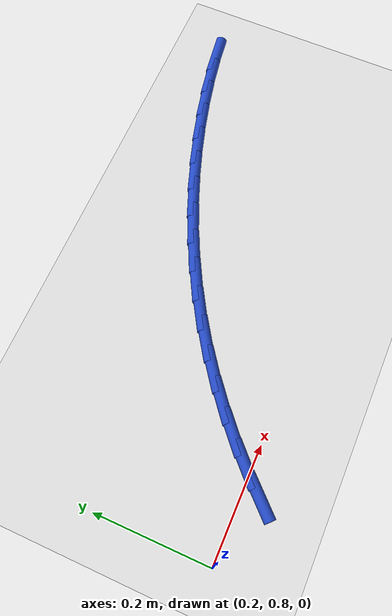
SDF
<sdf version="1.6">
 <world name="default">
  <model name="ground_plane">
   <static>1</static>
   <link name="link">
    <collision name="collision">
     <geometry><plane><normal>0 0 1</normal><size>100 100</size></plane></geometry>
     <surface><friction><ode><mu>100</mu><mu2>50</mu2></ode></friction></surface>
    </collision>
    <visual name="visual">
     <cast_shadows>0</cast_shadows>
     <geometry><plane><normal>0 0 1</normal><size>100 100</size></plane></geometry>
     <material>
      <script><uri>file://media/materials/scripts/gazebo.material</uri><name>Gazebo/WhiteGlow</name></script>
     </material>
    </visual>
   </link>
  </model>
  <model name="line">
   <link name="link_16">
    <pose>0.32334742752637485 0.7741905498279851 0.01 0 1.57 0.8064206672093044</pose>
    <collision name="collision">
     <geometry><cylinder><radius>0.01</radius><length>0.08</length></cylinder></geometry>
    </collision>
    <visual name="visual">
     <material>
      <script><name>Gazebo/Blue</name><uri>file://media/materials/scripts/gazebo.material</uri></script>
     </material>
     <geometry><cylinder><radius>0.01</radius><length>0.08</length></cylinder></geometry>
    </visual>
   </link>
   <link name="link_17">
    <pose>0.36040547805026557 0.8128404045830945 0.01 0 1.57 0.7616917721558387</pose>
    <collision name="collision">
     <geometry><cylinder><radius>0.01</radius><length>0.08</length></cylinder></geometry>
    </collision>
    <visual name="visual">
     <material>
      <script><name>Gazebo/Blue</name><uri>file://media/materials/scripts/gazebo.material</uri></script>
     </material>
     <geometry><cylinder><radius>0.01</radius><length>0.08</length></cylinder></geometry>
    </visual>
   </link>
   <link name="link_18">
    <pose>0.3991081642726106 0.8497502545728456 0.01 0 1.57 0.7161123081371562</pose>
    <collision name="collision">
     <geometry><cylinder><radius>0.01</radius><length>0.08</length></cylinder></geometry>
    </collision>
    <visual name="visual">
     <material>
      <script><name>Gazebo/Blue</name><uri>file://media/materials/scripts/gazebo.material</uri></script>
     </material>
     <geometry><cylinder><radius>0.01</radius><length>0.08</length></cylinder></geometry>
    </visual>
   </link>
   <link name="link_19">
    <pose>0.4394098867156095 0.8848213352574399 0.01 0 1.57 0.6696126918376654</pose>
    <collision name="collision">
     <geometry><cylinder><radius>0.01</radius><length>0.08</length></cylinder></geometry>
    </collision>
    <visual name="visual">
     <material>
      <script><name>Gazebo/Blue</name><uri>file://media/materials/scripts/gazebo.material</uri></script>
     </material>
     <geometry><cylinder><radius>0.01</radius><length>0.08</length></cylinder></geometry>
    </visual>
   </link>
   <link name="link_20">
    <pose>0.4812650459014617 0.9179548820970771 0.01 0 1.57 0.6221355525823545</pose>
    <collision name="collision">
     <geometry><cylinder><radius>0.01</radius><length>0.08</length></cylinder></geometry>
    </collision>
    <visual name="visual">
     <material>
      <script><name>Gazebo/Blue</name><uri>file://media/materials/scripts/gazebo.material</uri></script>
     </material>
     <geometry><cylinder><radius>0.01</radius><length>0.08</length></cylinder></geometry>
    </visual>
   </link>
   <link name="link_21">
    <pose>0.5246280423523669 0.9490521305519585 0.01 0 1.57 0.5739362742025336</pose>
    <collision name="collision">
     <geometry><cylinder><radius>0.01</radius><length>0.08</length></cylinder></geometry>
    </collision>
    <visual name="visual">
     <material>
      <script><name>Gazebo/Blue</name><uri>file://media/materials/scripts/gazebo.material</uri></script>
     </material>
     <geometry><cylinder><radius>0.01</radius><length>0.08</length></cylinder></geometry>
    </visual>
   </link>
   <link name="link_22">
    <pose>0.5694432860711782 0.9780268026977607 0.01 0 1.57 0.5270073962402096</pose>
    <collision name="collision">
     <geometry><cylinder><radius>0.01</radius><length>0.08</length></cylinder></geometry>
    </collision>
    <visual name="visual">
     <material>
      <script><name>Gazebo/Blue</name><uri>file://media/materials/scripts/gazebo.material</uri></script>
     </material>
     <geometry><cylinder><radius>0.01</radius><length>0.08</length></cylinder></geometry>
    </visual>
   </link>
   <link name="link_23">
    <pose>0.6155869050357399 1.0048779626590179 0.01 0 1.57 0.48211467899122024</pose>
    <collision name="collision">
     <geometry><cylinder><radius>0.01</radius><length>0.08</length></cylinder></geometry>
    </collision>
    <visual name="visual">
     <material>
      <script><name>Gazebo/Blue</name><uri>file://media/materials/scripts/gazebo.material</uri></script>
     </material>
     <geometry><cylinder><radius>0.01</radius><length>0.08</length></cylinder></geometry>
    </visual>
   </link>
   <link name="link_24">
    <pose>0.6629064688479643 1.0296403681460018 0.01 0 1.57 0.4391461568968692</pose>
    <collision name="collision">
     <geometry><cylinder><radius>0.01</radius><length>0.08</length></cylinder></geometry>
    </collision>
    <visual name="visual">
     <material>
      <script><name>Gazebo/Blue</name><uri>file://media/materials/scripts/gazebo.material</uri></script>
     </material>
     <geometry><cylinder><radius>0.01</radius><length>0.08</length></cylinder></geometry>
    </visual>
   </link>
   <link name="link_25">
    <pose>0.711249450860876 1.052348897165321 0.01 0 1.57 0.3979682760912729</pose>
    <collision name="collision">
     <geometry><cylinder><radius>0.01</radius><length>0.08</length></cylinder></geometry>
    </collision>
    <visual name="visual">
     <material>
      <script><name>Gazebo/Blue</name><uri>file://media/materials/scripts/gazebo.material</uri></script>
     </material>
     <geometry><cylinder><radius>0.01</radius><length>0.08</length></cylinder></geometry>
    </visual>
   </link>
   <link name="link_26">
    <pose>0.7604633244274991 1.0730384277235823 0.01 0 1.57 0.3584338763857777</pose>
    <collision name="collision">
     <geometry><cylinder><radius>0.01</radius><length>0.08</length></cylinder></geometry>
    </collision>
    <visual name="visual">
     <material>
      <script><name>Gazebo/Blue</name><uri>file://media/materials/scripts/gazebo.material</uri></script>
     </material>
     <geometry><cylinder><radius>0.01</radius><length>0.08</length></cylinder></geometry>
    </visual>
   </link>
   <link name="link_27">
    <pose>0.8103955629008577 1.0917438378273938 0.01 0 1.57 0.320386078438987</pose>
    <collision name="collision">
     <geometry><cylinder><radius>0.01</radius><length>0.08</length></cylinder></geometry>
    </collision>
    <visual name="visual">
     <material>
      <script><name>Gazebo/Blue</name><uri>file://media/materials/scripts/gazebo.material</uri></script>
     </material>
     <geometry><cylinder><radius>0.01</radius><length>0.08</length></cylinder></geometry>
    </visual>
   </link>
   <link name="link_28">
    <pose>0.8608936396339756 1.1085000054833622 0.01 0 1.57 0.2836610229214086</pose>
    <collision name="collision">
     <geometry><cylinder><radius>0.01</radius><length>0.08</length></cylinder></geometry>
    </collision>
    <visual name="visual">
     <material>
      <script><name>Gazebo/Blue</name><uri>file://media/materials/scripts/gazebo.material</uri></script>
     </material>
     <geometry><cylinder><radius>0.01</radius><length>0.08</length></cylinder></geometry>
    </visual>
   </link>
   <link name="link_29">
    <pose>0.9118050279798775 1.1233418086980964 0.01 0 1.57 0.2480852066058218</pose>
    <collision name="collision">
     <geometry><cylinder><radius>0.01</radius><length>0.08</length></cylinder></geometry>
    </collision>
    <visual name="visual">
     <material>
      <script><name>Gazebo/Blue</name><uri>file://media/materials/scripts/gazebo.material</uri></script>
     </material>
     <geometry><cylinder><radius>0.01</radius><length>0.08</length></cylinder></geometry>
    </visual>
   </link>
   <link name="link_30">
    <pose>0.9629774817080989 1.1363039589972248 0.01 0 1.57 0.21257292879052628</pose>
    <collision name="collision">
     <geometry><cylinder><radius>0.01</radius><length>0.08</length></cylinder></geometry>
    </collision>
    <visual name="visual">
     <material>
      <script><name>Gazebo/Blue</name><uri>file://media/materials/scripts/gazebo.material</uri></script>
     </material>
     <geometry><cylinder><radius>0.01</radius><length>0.08</length></cylinder></geometry>
    </visual>
   </link>
   <link name="link_31">
    <pose>1.0143192590030778 1.1473852469326706 0.01 0 1.57 0.17506423981644026</pose>
    <collision name="collision">
     <geometry><cylinder><radius>0.01</radius><length>0.08</length></cylinder></geometry>
    </collision>
    <visual name="visual">
     <material>
      <script><name>Gazebo/Blue</name><uri>file://media/materials/scripts/gazebo.material</uri></script>
     </material>
     <geometry><cylinder><radius>0.01</radius><length>0.08</length></cylinder></geometry>
    </visual>
   </link>
   <link name="link_32">
    <pose>1.065874133760421 1.1565040084927394 0.01 0 1.57 0.13544981306966064</pose>
    <collision name="collision">
     <geometry><cylinder><radius>0.01</radius><length>0.08</length></cylinder></geometry>
    </collision>
    <visual name="visual">
     <material>
      <script><name>Gazebo/Blue</name><uri>file://media/materials/scripts/gazebo.material</uri></script>
     </material>
     <geometry><cylinder><radius>0.01</radius><length>0.08</length></cylinder></geometry>
    </visual>
   </link>
  </model>
 </world>
</sdf>
